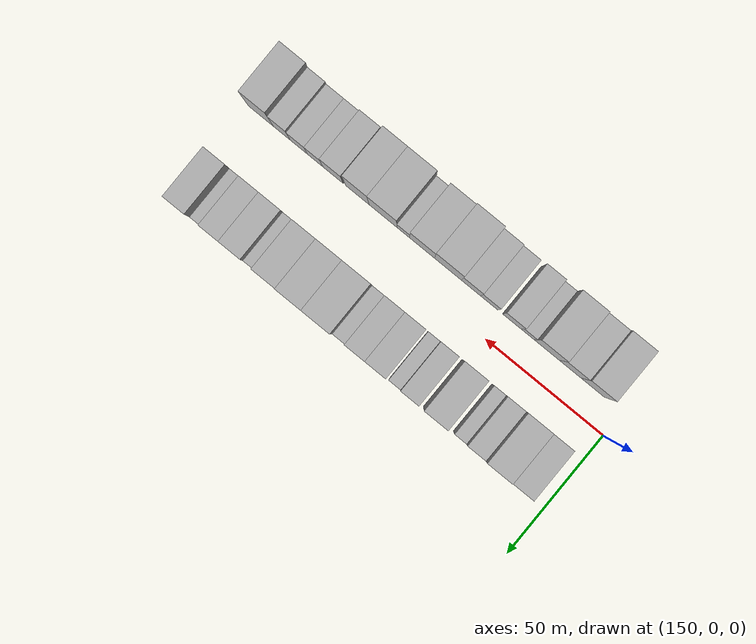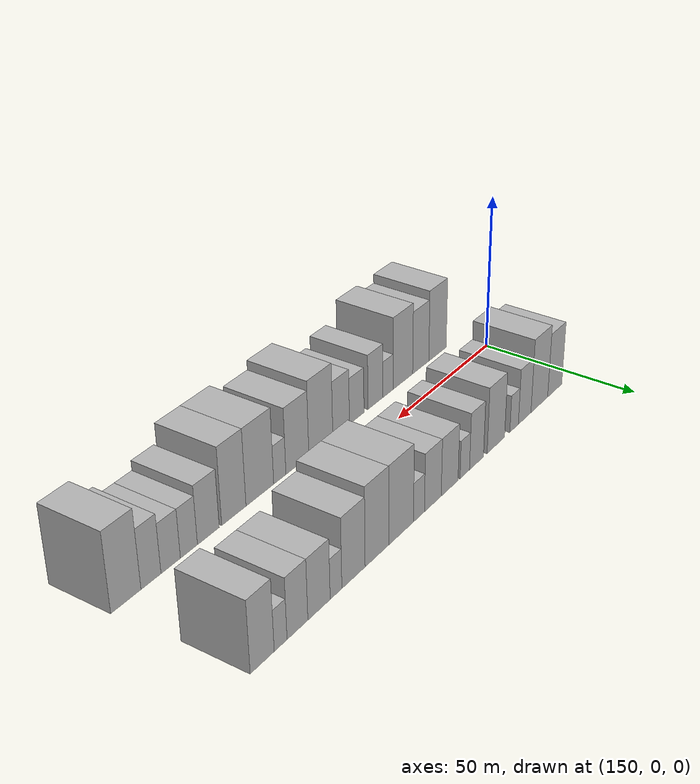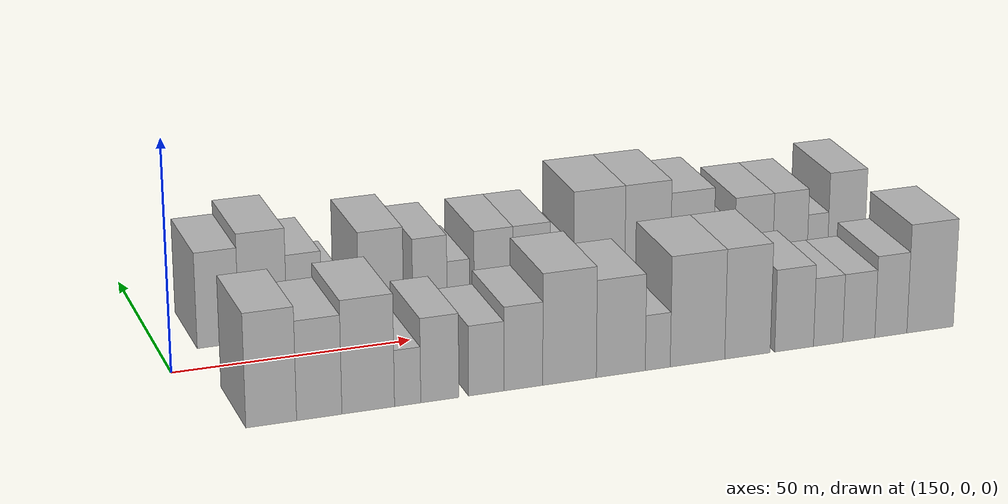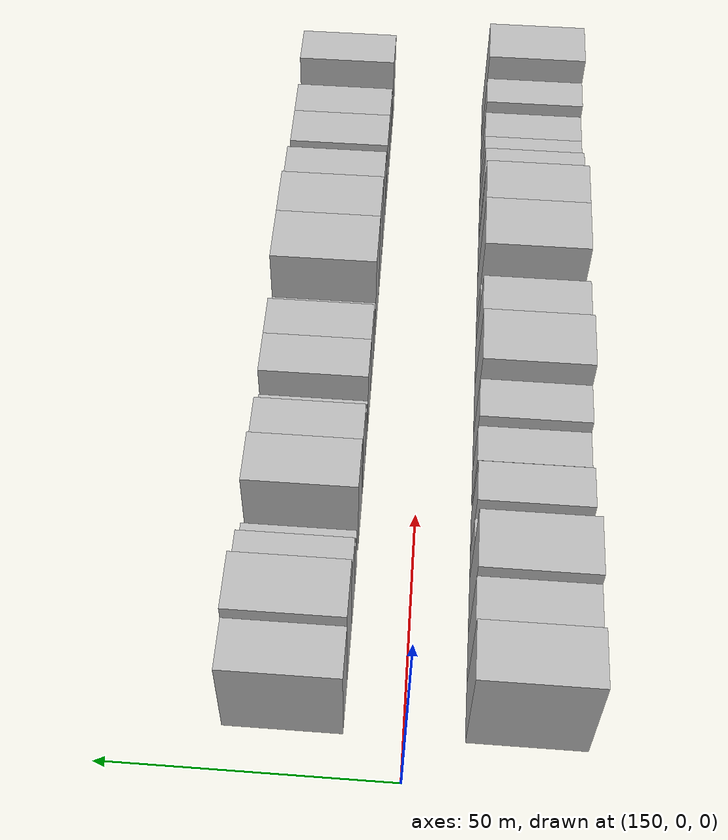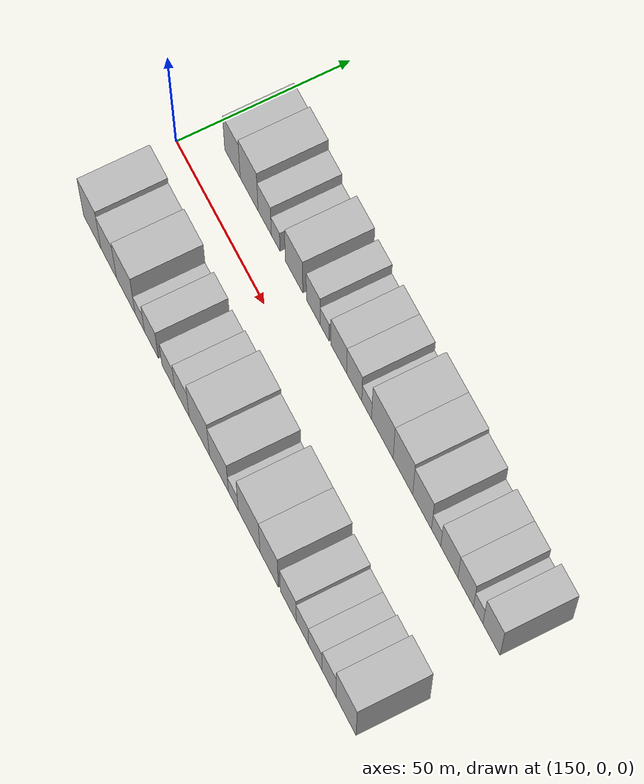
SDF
<sdf version="1.6">
 <world name="default">
  <model name="building_16">
   <static>1</static>
   <pose>162.0779 20.0000 0 0.000000 0.000000 1.570796</pose>
   <link name="link">
    <pose>0 0 10.50 0 0 0</pose>
    <collision name="collision"><geometry><box><size>20.0000 8.8384 21.0000</size></box></geometry></collision>
    <visual name="visual">
     <cast_shadows>0</cast_shadows>
     <geometry><box><size>20.0000 8.8384 21.0000</size></box></geometry>
     <material>
      <script>
       <uri>model://HANNAS_wall/materials/scripts</uri>
       <uri>model://HANNAS_wall/materials/textures</uri>
       <name>vrc/HANNAS_wall</name>
      </script>
     </material>
    </visual>
   </link>
  </model>
  <model name="building_17">
   <static>1</static>
   <pose>171.5769 20.0000 0 0.000000 0.000000 1.570796</pose>
   <link name="link">
    <pose>0 0 12.00 0 0 0</pose>
    <collision name="collision"><geometry><box><size>20.0000 10.1597 24.0000</size></box></geometry></collision>
    <visual name="visual">
     <cast_shadows>0</cast_shadows>
     <geometry><box><size>20.0000 10.1597 24.0000</size></box></geometry>
     <material>
      <script>
       <uri>model://HANNAS_wall/materials/scripts</uri>
       <uri>model://HANNAS_wall/materials/textures</uri>
       <name>vrc/HANNAS_wall</name>
      </script>
     </material>
    </visual>
   </link>
  </model>
  <model name="building_18">
   <static>1</static>
   <pose>180.3827 20.0000 0 0.000000 0.000000 1.570796</pose>
   <link name="link">
    <pose>0 0 9.00 0 0 0</pose>
    <collision name="collision"><geometry><box><size>20.0000 7.4519 18.0000</size></box></geometry></collision>
    <visual name="visual">
     <cast_shadows>0</cast_shadows>
     <geometry><box><size>20.0000 7.4519 18.0000</size></box></geometry>
     <material>
      <script>
       <uri>model://HANNAS_wall/materials/scripts</uri>
       <uri>model://HANNAS_wall/materials/textures</uri>
       <name>vrc/HANNAS_wall</name>
      </script>
     </material>
    </visual>
   </link>
  </model>
  <model name="building_19">
   <static>1</static>
   <pose>186.5635 20.0000 0 0.000000 0.000000 1.570796</pose>
   <link name="link">
    <pose>0 0 6.00 0 0 0</pose>
    <collision name="collision"><geometry><box><size>20.0000 4.9098 12.0000</size></box></geometry></collision>
    <visual name="visual">
     <cast_shadows>0</cast_shadows>
     <geometry><box><size>20.0000 4.9098 12.0000</size></box></geometry>
     <material>
      <script>
       <uri>model://HANNAS_wall/materials/scripts</uri>
       <uri>model://HANNAS_wall/materials/textures</uri>
       <name>vrc/HANNAS_wall</name>
      </script>
     </material>
    </visual>
   </link>
  </model>
  <model name="building_20">
   <static>1</static>
   <pose>196.8734 20.0000 0 0.000000 0.000000 1.570796</pose>
   <link name="link">
    <pose>0 0 10.50 0 0 0</pose>
    <collision name="collision"><geometry><box><size>20.0000 9.7098 21.0000</size></box></geometry></collision>
    <visual name="visual">
     <cast_shadows>0</cast_shadows>
     <geometry><box><size>20.0000 9.7098 21.0000</size></box></geometry>
     <material>
      <script>
       <uri>model://HANNAS_wall/materials/scripts</uri>
       <uri>model://HANNAS_wall/materials/textures</uri>
       <name>vrc/HANNAS_wall</name>
      </script>
     </material>
    </visual>
   </link>
  </model>
  <model name="building_21">
   <static>1</static>
   <pose>207.4792 20.0000 0 0.000000 0.000000 1.570796</pose>
   <link name="link">
    <pose>0 0 9.00 0 0 0</pose>
    <collision name="collision"><geometry><box><size>20.0000 7.5019 18.0000</size></box></geometry></collision>
    <visual name="visual">
     <cast_shadows>0</cast_shadows>
     <geometry><box><size>20.0000 7.5019 18.0000</size></box></geometry>
     <material>
      <script>
       <uri>model://HANNAS_wall/materials/scripts</uri>
       <uri>model://HANNAS_wall/materials/textures</uri>
       <name>vrc/HANNAS_wall</name>
      </script>
     </material>
    </visual>
   </link>
  </model>
  <model name="building_22">
   <static>1</static>
   <pose>213.7127 20.0000 0 0.000000 0.000000 1.570796</pose>
   <link name="link">
    <pose>0 0 6.00 0 0 0</pose>
    <collision name="collision"><geometry><box><size>20.0000 4.9652 12.0000</size></box></geometry></collision>
    <visual name="visual">
     <cast_shadows>0</cast_shadows>
     <geometry><box><size>20.0000 4.9652 12.0000</size></box></geometry>
     <material>
      <script>
       <uri>model://HANNAS_wall/materials/scripts</uri>
       <uri>model://HANNAS_wall/materials/textures</uri>
       <name>vrc/HANNAS_wall</name>
      </script>
     </material>
    </visual>
   </link>
  </model>
  <model name="building_23">
   <static>1</static>
   <pose>221.4947 20.0000 0 0.000000 0.000000 1.570796</pose>
   <link name="link">
    <pose>0 0 9.00 0 0 0</pose>
    <collision name="collision"><geometry><box><size>20.0000 8.5988 18.0000</size></box></geometry></collision>
    <visual name="visual">
     <cast_shadows>0</cast_shadows>
     <geometry><box><size>20.0000 8.5988 18.0000</size></box></geometry>
     <material>
      <script>
       <uri>model://HANNAS_wall/materials/scripts</uri>
       <uri>model://HANNAS_wall/materials/textures</uri>
       <name>vrc/HANNAS_wall</name>
      </script>
     </material>
    </visual>
   </link>
  </model>
  <model name="building_24">
   <static>1</static>
   <pose>229.9302 20.0000 0 0.000000 0.000000 1.570796</pose>
   <link name="link">
    <pose>0 0 9.00 0 0 0</pose>
    <collision name="collision"><geometry><box><size>20.0000 8.2722 18.0000</size></box></geometry></collision>
    <visual name="visual">
     <cast_shadows>0</cast_shadows>
     <geometry><box><size>20.0000 8.2722 18.0000</size></box></geometry>
     <material>
      <script>
       <uri>model://HANNAS_wall/materials/scripts</uri>
       <uri>model://HANNAS_wall/materials/textures</uri>
       <name>vrc/HANNAS_wall</name>
      </script>
     </material>
    </visual>
   </link>
  </model>
  <model name="building_25">
   <static>1</static>
   <pose>236.7122 20.0000 0 0.000000 0.000000 1.570796</pose>
   <link name="link">
    <pose>0 0 6.00 0 0 0</pose>
    <collision name="collision"><geometry><box><size>20.0000 5.2917 12.0000</size></box></geometry></collision>
    <visual name="visual">
     <cast_shadows>0</cast_shadows>
     <geometry><box><size>20.0000 5.2917 12.0000</size></box></geometry>
     <material>
      <script>
       <uri>model://HANNAS_wall/materials/scripts</uri>
       <uri>model://HANNAS_wall/materials/textures</uri>
       <name>vrc/HANNAS_wall</name>
      </script>
     </material>
    </visual>
   </link>
  </model>
  <model name="building_26">
   <static>1</static>
   <pose>245.1382 20.0000 0 0.000000 0.000000 1.570796</pose>
   <link name="link">
    <pose>0 0 12.00 0 0 0</pose>
    <collision name="collision"><geometry><box><size>20.0000 11.5604 24.0000</size></box></geometry></collision>
    <visual name="visual">
     <cast_shadows>0</cast_shadows>
     <geometry><box><size>20.0000 11.5604 24.0000</size></box></geometry>
     <material>
      <script>
       <uri>model://HANNAS_wall/materials/scripts</uri>
       <uri>model://HANNAS_wall/materials/textures</uri>
       <name>vrc/HANNAS_wall</name>
      </script>
     </material>
    </visual>
   </link>
  </model>
  <model name="building_27">
   <static>1</static>
   <pose>256.1483 20.0000 0 0.000000 0.000000 1.570796</pose>
   <link name="link">
    <pose>0 0 12.00 0 0 0</pose>
    <collision name="collision"><geometry><box><size>20.0000 10.4598 24.0000</size></box></geometry></collision>
    <visual name="visual">
     <cast_shadows>0</cast_shadows>
     <geometry><box><size>20.0000 10.4598 24.0000</size></box></geometry>
     <material>
      <script>
       <uri>model://HANNAS_wall/materials/scripts</uri>
       <uri>model://HANNAS_wall/materials/textures</uri>
       <name>vrc/HANNAS_wall</name>
      </script>
     </material>
    </visual>
   </link>
  </model>
  <model name="building_28">
   <static>1</static>
   <pose>266.3524 20.0000 0 0.000000 0.000000 1.570796</pose>
   <link name="link">
    <pose>0 0 10.50 0 0 0</pose>
    <collision name="collision"><geometry><box><size>20.0000 9.9483 21.0000</size></box></geometry></collision>
    <visual name="visual">
     <cast_shadows>0</cast_shadows>
     <geometry><box><size>20.0000 9.9483 21.0000</size></box></geometry>
     <material>
      <script>
       <uri>model://HANNAS_wall/materials/scripts</uri>
       <uri>model://HANNAS_wall/materials/textures</uri>
       <name>vrc/HANNAS_wall</name>
      </script>
     </material>
    </visual>
   </link>
  </model>
  <model name="building_29">
   <static>1</static>
   <pose>273.7515 20.0000 0 0.000000 0.000000 1.570796</pose>
   <link name="link">
    <pose>0 0 6.00 0 0 0</pose>
    <collision name="collision"><geometry><box><size>20.0000 4.8498 12.0000</size></box></geometry></collision>
    <visual name="visual">
     <cast_shadows>0</cast_shadows>
     <geometry><box><size>20.0000 4.8498 12.0000</size></box></geometry>
     <material>
      <script>
       <uri>model://HANNAS_wall/materials/scripts</uri>
       <uri>model://HANNAS_wall/materials/textures</uri>
       <name>vrc/HANNAS_wall</name>
      </script>
     </material>
    </visual>
   </link>
  </model>
  <model name="building_30">
   <static>1</static>
   <pose>280.6696 20.0000 0 0.000000 0.000000 1.570796</pose>
   <link name="link">
    <pose>0 0 9.00 0 0 0</pose>
    <collision name="collision"><geometry><box><size>20.0000 8.9865 18.0000</size></box></geometry></collision>
    <visual name="visual">
     <cast_shadows>0</cast_shadows>
     <geometry><box><size>20.0000 8.9865 18.0000</size></box></geometry>
     <material>
      <script>
       <uri>model://HANNAS_wall/materials/scripts</uri>
       <uri>model://HANNAS_wall/materials/textures</uri>
       <name>vrc/HANNAS_wall</name>
      </script>
     </material>
    </visual>
   </link>
  </model>
  <model name="building_31">
   <static>1</static>
   <pose>289.2154 20.0000 0 0.000000 0.000000 1.570796</pose>
   <link name="link">
    <pose>0 0 9.00 0 0 0</pose>
    <collision name="collision"><geometry><box><size>20.0000 8.1050 18.0000</size></box></geometry></collision>
    <visual name="visual">
     <cast_shadows>0</cast_shadows>
     <geometry><box><size>20.0000 8.1050 18.0000</size></box></geometry>
     <material>
      <script>
       <uri>model://HANNAS_wall/materials/scripts</uri>
       <uri>model://HANNAS_wall/materials/textures</uri>
       <name>vrc/HANNAS_wall</name>
      </script>
     </material>
    </visual>
   </link>
  </model>
  <model name="building_32">
   <static>1</static>
   <pose>295.6889 20.0000 0 0.000000 0.000000 1.570796</pose>
   <link name="link">
    <pose>0 0 6.00 0 0 0</pose>
    <collision name="collision"><geometry><box><size>20.0000 4.8420 12.0000</size></box></geometry></collision>
    <visual name="visual">
     <cast_shadows>0</cast_shadows>
     <geometry><box><size>20.0000 4.8420 12.0000</size></box></geometry>
     <material>
      <script>
       <uri>model://HANNAS_wall/materials/scripts</uri>
       <uri>model://HANNAS_wall/materials/textures</uri>
       <name>vrc/HANNAS_wall</name>
      </script>
     </material>
    </visual>
   </link>
  </model>
  <model name="building_33">
   <static>1</static>
   <pose>302.5286 20.0000 0 0.000000 0.000000 1.570796</pose>
   <link name="link">
    <pose>0 0 10.50 0 0 0</pose>
    <collision name="collision"><geometry><box><size>20.0000 8.8374 21.0000</size></box></geometry></collision>
    <visual name="visual">
     <cast_shadows>0</cast_shadows>
     <geometry><box><size>20.0000 8.8374 21.0000</size></box></geometry>
     <material>
      <script>
       <uri>model://HANNAS_wall/materials/scripts</uri>
       <uri>model://HANNAS_wall/materials/textures</uri>
       <name>vrc/HANNAS_wall</name>
      </script>
     </material>
    </visual>
   </link>
  </model>
  <model name="building_51">
   <static>1</static>
   <pose>162.7501 -20.0000 0 0.000000 0.000000 1.570796</pose>
   <link name="link">
    <pose>0 0 12.00 0 0 0</pose>
    <collision name="collision"><geometry><box><size>20.0000 10.1210 24.0000</size></box></geometry></collision>
    <visual name="visual">
     <cast_shadows>0</cast_shadows>
     <geometry><box><size>20.0000 10.1210 24.0000</size></box></geometry>
     <material>
      <script>
       <uri>model://HANNAS_wall/materials/scripts</uri>
       <uri>model://HANNAS_wall/materials/textures</uri>
       <name>vrc/HANNAS_wall</name>
      </script>
     </material>
    </visual>
   </link>
  </model>
  <model name="building_52">
   <static>1</static>
   <pose>172.3680 -20.0000 0 0.000000 0.000000 1.570796</pose>
   <link name="link">
    <pose>0 0 10.50 0 0 0</pose>
    <collision name="collision"><geometry><box><size>20.0000 9.1146 21.0000</size></box></geometry></collision>
    <visual name="visual">
     <cast_shadows>0</cast_shadows>
     <geometry><box><size>20.0000 9.1146 21.0000</size></box></geometry>
     <material>
      <script>
       <uri>model://HANNAS_wall/materials/scripts</uri>
       <uri>model://HANNAS_wall/materials/textures</uri>
       <name>vrc/HANNAS_wall</name>
      </script>
     </material>
    </visual>
   </link>
  </model>
  <model name="building_53">
   <static>1</static>
   <pose>182.2688 -20.0000 0 0.000000 0.000000 1.570796</pose>
   <link name="link">
    <pose>0 0 12.00 0 0 0</pose>
    <collision name="collision"><geometry><box><size>20.0000 10.6870 24.0000</size></box></geometry></collision>
    <visual name="visual">
     <cast_shadows>0</cast_shadows>
     <geometry><box><size>20.0000 10.6870 24.0000</size></box></geometry>
     <material>
      <script>
       <uri>model://HANNAS_wall/materials/scripts</uri>
       <uri>model://HANNAS_wall/materials/textures</uri>
       <name>vrc/HANNAS_wall</name>
      </script>
     </material>
    </visual>
   </link>
  </model>
  <model name="building_54">
   <static>1</static>
   <pose>190.3053 -20.0000 0 0.000000 0.000000 1.570796</pose>
   <link name="link">
    <pose>0 0 6.00 0 0 0</pose>
    <collision name="collision"><geometry><box><size>20.0000 5.3861 12.0000</size></box></geometry></collision>
    <visual name="visual">
     <cast_shadows>0</cast_shadows>
     <geometry><box><size>20.0000 5.3861 12.0000</size></box></geometry>
     <material>
      <script>
       <uri>model://HANNAS_wall/materials/scripts</uri>
       <uri>model://HANNAS_wall/materials/textures</uri>
       <name>vrc/HANNAS_wall</name>
      </script>
     </material>
    </visual>
   </link>
  </model>
  <model name="building_55">
   <static>1</static>
   <pose>196.9337 -20.0000 0 0.000000 0.000000 1.570796</pose>
   <link name="link">
    <pose>0 0 9.00 0 0 0</pose>
    <collision name="collision"><geometry><box><size>20.0000 7.8708 18.0000</size></box></geometry></collision>
    <visual name="visual">
     <cast_shadows>0</cast_shadows>
     <geometry><box><size>20.0000 7.8708 18.0000</size></box></geometry>
     <material>
      <script>
       <uri>model://HANNAS_wall/materials/scripts</uri>
       <uri>model://HANNAS_wall/materials/textures</uri>
       <name>vrc/HANNAS_wall</name>
      </script>
     </material>
    </visual>
   </link>
  </model>
  <model name="building_56">
   <static>1</static>
   <pose>206.5464 -20.0000 0 0.000000 0.000000 1.570796</pose>
   <link name="link">
    <pose>0 0 7.50 0 0 0</pose>
    <collision name="collision"><geometry><box><size>20.0000 7.3545 15.0000</size></box></geometry></collision>
    <visual name="visual">
     <cast_shadows>0</cast_shadows>
     <geometry><box><size>20.0000 7.3545 15.0000</size></box></geometry>
     <material>
      <script>
       <uri>model://HANNAS_wall/materials/scripts</uri>
       <uri>model://HANNAS_wall/materials/textures</uri>
       <name>vrc/HANNAS_wall</name>
      </script>
     </material>
    </visual>
   </link>
  </model>
  <model name="building_57">
   <static>1</static>
   <pose>214.2961 -20.0000 0 0.000000 0.000000 1.570796</pose>
   <link name="link">
    <pose>0 0 9.00 0 0 0</pose>
    <collision name="collision"><geometry><box><size>20.0000 8.1451 18.0000</size></box></geometry></collision>
    <visual name="visual">
     <cast_shadows>0</cast_shadows>
     <geometry><box><size>20.0000 8.1451 18.0000</size></box></geometry>
     <material>
      <script>
       <uri>model://HANNAS_wall/materials/scripts</uri>
       <uri>model://HANNAS_wall/materials/textures</uri>
       <name>vrc/HANNAS_wall</name>
      </script>
     </material>
    </visual>
   </link>
  </model>
  <model name="building_58">
   <static>1</static>
   <pose>224.0406 -20.0000 0 0.000000 0.000000 1.570796</pose>
   <link name="link">
    <pose>0 0 12.00 0 0 0</pose>
    <collision name="collision"><geometry><box><size>20.0000 11.3439 24.0000</size></box></geometry></collision>
    <visual name="visual">
     <cast_shadows>0</cast_shadows>
     <geometry><box><size>20.0000 11.3439 24.0000</size></box></geometry>
     <material>
      <script>
       <uri>model://HANNAS_wall/materials/scripts</uri>
       <uri>model://HANNAS_wall/materials/textures</uri>
       <name>vrc/HANNAS_wall</name>
      </script>
     </material>
    </visual>
   </link>
  </model>
  <model name="building_59">
   <static>1</static>
   <pose>234.9484 -20.0000 0 0.000000 0.000000 1.570796</pose>
   <link name="link">
    <pose>0 0 10.50 0 0 0</pose>
    <collision name="collision"><geometry><box><size>20.0000 10.4716 21.0000</size></box></geometry></collision>
    <visual name="visual">
     <cast_shadows>0</cast_shadows>
     <geometry><box><size>20.0000 10.4716 21.0000</size></box></geometry>
     <material>
      <script>
       <uri>model://HANNAS_wall/materials/scripts</uri>
       <uri>model://HANNAS_wall/materials/textures</uri>
       <name>vrc/HANNAS_wall</name>
      </script>
     </material>
    </visual>
   </link>
  </model>
  <model name="building_60">
   <static>1</static>
   <pose>242.8793 -20.0000 0 0.000000 0.000000 1.570796</pose>
   <link name="link">
    <pose>0 0 6.00 0 0 0</pose>
    <collision name="collision"><geometry><box><size>20.0000 5.3904 12.0000</size></box></geometry></collision>
    <visual name="visual">
     <cast_shadows>0</cast_shadows>
     <geometry><box><size>20.0000 5.3904 12.0000</size></box></geometry>
     <material>
      <script>
       <uri>model://HANNAS_wall/materials/scripts</uri>
       <uri>model://HANNAS_wall/materials/textures</uri>
       <name>vrc/HANNAS_wall</name>
      </script>
     </material>
    </visual>
   </link>
  </model>
  <model name="building_61">
   <static>1</static>
   <pose>251.5101 -20.0000 0 0.000000 0.000000 1.570796</pose>
   <link name="link">
    <pose>0 0 12.00 0 0 0</pose>
    <collision name="collision"><geometry><box><size>20.0000 11.8712 24.0000</size></box></geometry></collision>
    <visual name="visual">
     <cast_shadows>0</cast_shadows>
     <geometry><box><size>20.0000 11.8712 24.0000</size></box></geometry>
     <material>
      <script>
       <uri>model://HANNAS_wall/materials/scripts</uri>
       <uri>model://HANNAS_wall/materials/textures</uri>
       <name>vrc/HANNAS_wall</name>
      </script>
     </material>
    </visual>
   </link>
  </model>
  <model name="building_62">
   <static>1</static>
   <pose>262.4419 -20.0000 0 0.000000 0.000000 1.570796</pose>
   <link name="link">
    <pose>0 0 12.00 0 0 0</pose>
    <collision name="collision"><geometry><box><size>20.0000 9.9923 24.0000</size></box></geometry></collision>
    <visual name="visual">
     <cast_shadows>0</cast_shadows>
     <geometry><box><size>20.0000 9.9923 24.0000</size></box></geometry>
     <material>
      <script>
       <uri>model://HANNAS_wall/materials/scripts</uri>
       <uri>model://HANNAS_wall/materials/textures</uri>
       <name>vrc/HANNAS_wall</name>
      </script>
     </material>
    </visual>
   </link>
  </model>
  <model name="building_63">
   <static>1</static>
   <pose>272.7467 -20.0000 0 0.000000 0.000000 1.570796</pose>
   <link name="link">
    <pose>0 0 9.00 0 0 0</pose>
    <collision name="collision"><geometry><box><size>20.0000 8.6173 18.0000</size></box></geometry></collision>
    <visual name="visual">
     <cast_shadows>0</cast_shadows>
     <geometry><box><size>20.0000 8.6173 18.0000</size></box></geometry>
     <material>
      <script>
       <uri>model://HANNAS_wall/materials/scripts</uri>
       <uri>model://HANNAS_wall/materials/textures</uri>
       <name>vrc/HANNAS_wall</name>
      </script>
     </material>
    </visual>
   </link>
  </model>
  <model name="building_64">
   <static>1</static>
   <pose>280.3257 -20.0000 0 0.000000 0.000000 1.570796</pose>
   <link name="link">
    <pose>0 0 7.50 0 0 0</pose>
    <collision name="collision"><geometry><box><size>20.0000 6.5406 15.0000</size></box></geometry></collision>
    <visual name="visual">
     <cast_shadows>0</cast_shadows>
     <geometry><box><size>20.0000 6.5406 15.0000</size></box></geometry>
     <material>
      <script>
       <uri>model://HANNAS_wall/materials/scripts</uri>
       <uri>model://HANNAS_wall/materials/textures</uri>
       <name>vrc/HANNAS_wall</name>
      </script>
     </material>
    </visual>
   </link>
  </model>
  <model name="building_65">
   <static>1</static>
   <pose>287.2116 -20.0000 0 0.000000 0.000000 1.570796</pose>
   <link name="link">
    <pose>0 0 7.50 0 0 0</pose>
    <collision name="collision"><geometry><box><size>20.0000 7.2311 15.0000</size></box></geometry></collision>
    <visual name="visual">
     <cast_shadows>0</cast_shadows>
     <geometry><box><size>20.0000 7.2311 15.0000</size></box></geometry>
     <material>
      <script>
       <uri>model://HANNAS_wall/materials/scripts</uri>
       <uri>model://HANNAS_wall/materials/textures</uri>
       <name>vrc/HANNAS_wall</name>
      </script>
     </material>
    </visual>
   </link>
  </model>
  <model name="building_66">
   <static>1</static>
   <pose>294.4574 -20.0000 0 0.000000 0.000000 1.570796</pose>
   <link name="link">
    <pose>0 0 9.00 0 0 0</pose>
    <collision name="collision"><geometry><box><size>20.0000 7.2605 18.0000</size></box></geometry></collision>
    <visual name="visual">
     <cast_shadows>0</cast_shadows>
     <geometry><box><size>20.0000 7.2605 18.0000</size></box></geometry>
     <material>
      <script>
       <uri>model://HANNAS_wall/materials/scripts</uri>
       <uri>model://HANNAS_wall/materials/textures</uri>
       <name>vrc/HANNAS_wall</name>
      </script>
     </material>
    </visual>
   </link>
  </model>
  <model name="building_67">
   <static>1</static>
   <pose>303.3894 -20.0000 0 0.000000 0.000000 1.570796</pose>
   <link name="link">
    <pose>0 0 12.00 0 0 0</pose>
    <collision name="collision"><geometry><box><size>20.0000 10.6035 24.0000</size></box></geometry></collision>
    <visual name="visual">
     <cast_shadows>0</cast_shadows>
     <geometry><box><size>20.0000 10.6035 24.0000</size></box></geometry>
     <material>
      <script>
       <uri>model://HANNAS_wall/materials/scripts</uri>
       <uri>model://HANNAS_wall/materials/textures</uri>
       <name>vrc/HANNAS_wall</name>
      </script>
     </material>
    </visual>
   </link>
  </model>
 </world>
</sdf>
